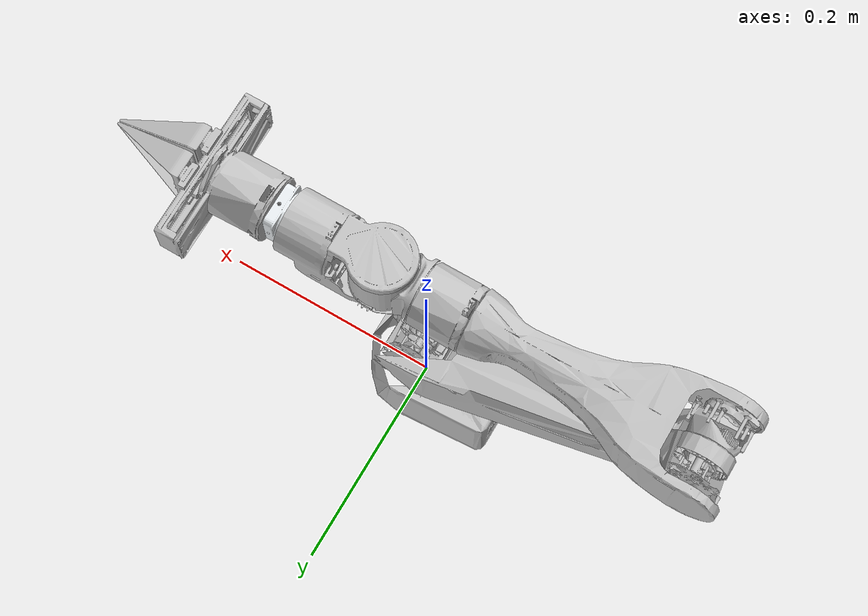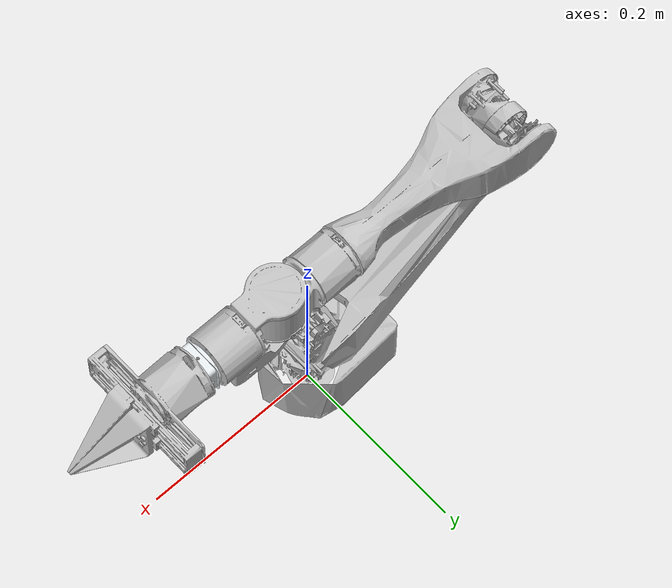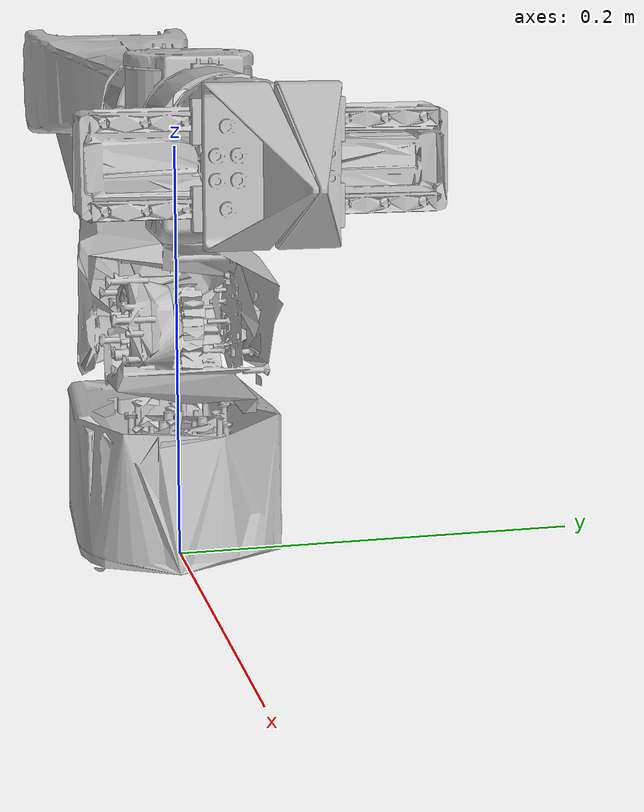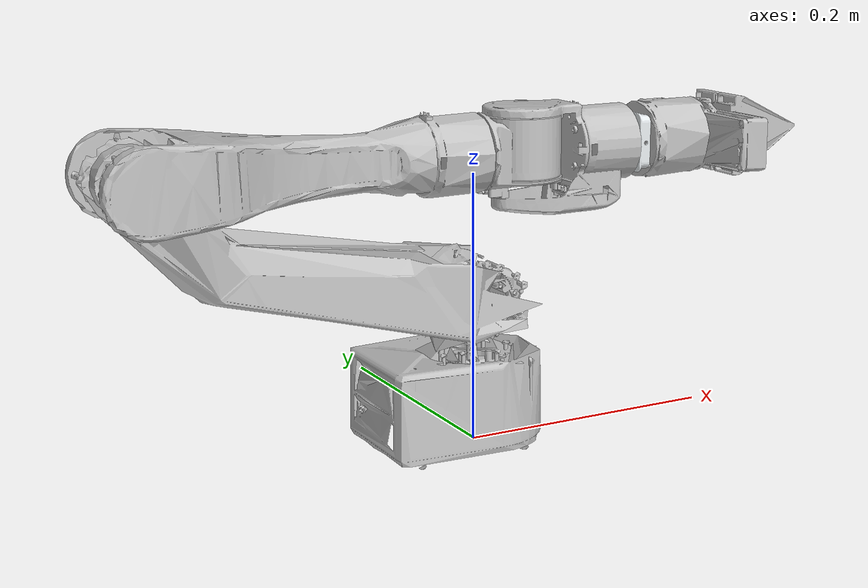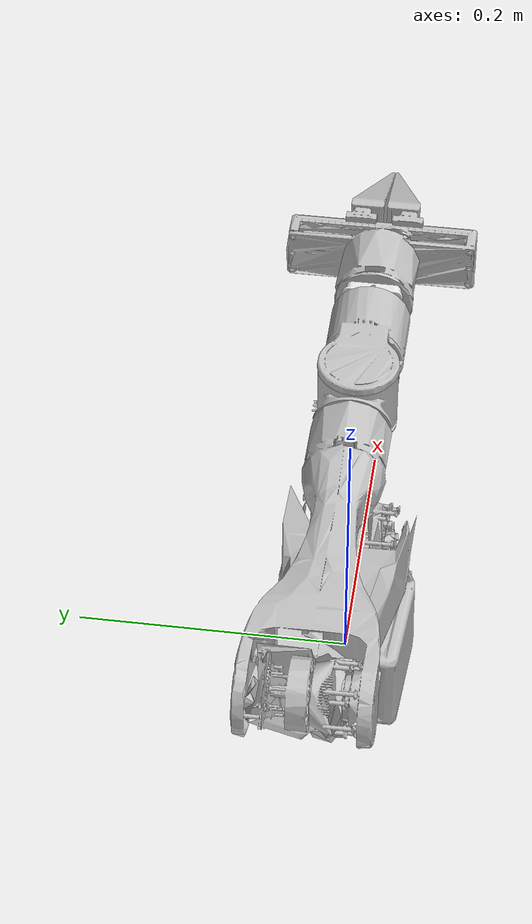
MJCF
<mujoco model="airbot_play_g2">
  <compiler angle="radian" meshdir="meshes/" boundmass="0.0001" boundinertia="1e-08"/>

  <visual>
    <global offwidth="1280" offheight="960"/>
  </visual>

  <asset>
    <mesh name="base_link" file="base_link.obj"/>
    <mesh name="link1" file="link1.obj"/>
    <mesh name="link2" file="link2.obj"/>
    <mesh name="link3" file="link3.obj"/>
    <mesh name="link4" file="link4.obj"/>
    <mesh name="link5" file="link5.obj"/>
    <mesh name="link6" file="link6.obj"/>
    <mesh name="eef_connect_base_link" file="eef_connect_base_link.obj"/>
    <mesh name="g2_base_link" file="g2_base_link.obj"/>
    <mesh name="g2_left_link" file="g2_left_link.obj"/>
    <mesh name="g2_right_link" file="g2_right_link.obj"/>
  </asset>

  <worldbody>
    <body name="base_link">
      <inertial pos="-0.018345 -0.002558 0.03724" quat="0.633314 0.26821 0.308725 0.657013" mass="0.6735" diaginertia="0.00165156 0.00147474 0.00100175"/>
      <geom type="mesh" contype="0" conaffinity="0" group="2" density="0" rgba="0.75294 0.75294 0.75294 1" mesh="base_link"/>
      <geom type="mesh" group="3" rgba="0.75294 0.75294 0.75294 1" mesh="base_link"/>
      <body name="link1" pos="0 0 0.1127">
        <inertial pos="0.00014396 -0.00098536 -0.020968" quat="0.996851 -0.00552866 0.00131697 0.0790989" mass="0.607" diaginertia="0.00111427 0.00101111 0.000386618"/>
        <joint name="joint1" pos="0 0 0" axis="0 0 1" range="-3.1416 2.0944" armature="0.1" damping="1"/>
        <geom type="mesh" contype="0" conaffinity="0" group="2" density="0" rgba="0.75294 0.75294 0.75294 1" mesh="link1"/>
        <geom type="mesh" group="3" rgba="0.75294 0.75294 0.75294 1" mesh="link1"/>
        <body name="link2" quat="0.135867 0.135871 -0.693931 0.69393">
          <inertial pos="0.13769 0.012537 0.0044739" quat="0.544988 0.469712 0.519552 0.460896" mass="0.918" diaginertia="0.0348354 0.0346196 0.000895236"/>
          <joint name="joint2" pos="0 0 0" axis="0 0 1" range="-2.9671 0.17453" armature="0.1" damping="1"/>
          <geom type="mesh" contype="0" conaffinity="0" group="2" density="0" rgba="0.75294 0.75294 0.75294 1" mesh="link2"/>
          <geom type="mesh" group="3" rgba="0.75294 0.75294 0.75294 1" mesh="link2"/>
          <body name="link3" pos="0.27009 0 0" quat="0.55806 0 0 0.8298">
            <inertial pos="1.5134e-05 0.10706 0.0082136" quat="0.709512 0.704687 -0.00192802 0.00241094" mass="0.7" diaginertia="0.0156592 0.0154818 0.000458584"/>
            <joint name="joint3" pos="0 0 0" axis="0 0 1" range="-0.087266 3.1416" armature="0.1" damping="1"/>
            <geom type="mesh" contype="0" conaffinity="0" group="2" density="0" rgba="0.75294 0.75294 0.75294 1" mesh="link3"/>
            <geom type="mesh" group="3" rgba="0.75294 0.75294 0.75294 1" mesh="link3"/>
            <body name="link4" pos="0 0.29015 0" quat="0.499998 -0.5 -0.5 -0.500002">
              <inertial pos="-1.6216e-05 0.002995 -0.019407" quat="0.705825 -0.00378066 0.00351614 0.708367" mass="0.359" diaginertia="0.000529292 0.00051773 0.000136768"/>
              <joint name="joint4" pos="0 0 0" axis="0 0 1" range="-3.0107 3.0107" armature="0.1" damping="1"/>
              <geom type="mesh" contype="0" conaffinity="0" group="2" density="0" rgba="0.75294 0.75294 0.75294 1" mesh="link4"/>
              <geom type="mesh" group="3" rgba="0.75294 0.75294 0.75294 1" mesh="link4"/>
              <body name="link5" quat="0.707105 0.707108 0 0">
                <inertial pos="-4.5037e-05 0.033144 0.0024106" quat="0.686718 0.726922 0.00098681 -0.00117372" mass="0.403" diaginertia="0.00116016 0.0010873 0.000239772"/>
                <joint name="joint5" pos="0 0 0" axis="0 0 1" range="-1.7628 1.7628" armature="0.1" damping="1"/>
                <geom type="mesh" contype="0" conaffinity="0" group="2" density="0" rgba="0.75294 0.75294 0.75294 1" mesh="link5"/>
                <geom type="mesh" group="3" rgba="0.75294 0.75294 0.75294 1" mesh="link5"/>
                <body name="link6" quat="0.707105 -0.707108 0 0">
                  <inertial pos="-4.6366e-05 4.3424e-05 0.066592" quat="0.92957 0.000174474 0.000439951 -0.368646" mass="0.11" diaginertia="0.00051056 0.00051056 1.72996e-05"/>
                  <joint name="joint6" pos="0 0 0" axis="0 0 1" range="-3.0107 3.0107" armature="0.1" damping="1"/>
                  <geom type="mesh" contype="0" conaffinity="0" group="2" density="0" rgba="1 1 1 1" mesh="link6"/>
                  <geom type="mesh" group="3" rgba="1 1 1 1" mesh="link6"/>
                  <body name="eef_connect_base_link" pos="0 0 0.0955">
                    <inertial pos="3.5687e-06 0.00020484 -0.004811" quat="0.502913 0.497096 -0.501767 0.498201" mass="0.019009" diaginertia="7.49802e-06 4.04761e-06 3.94547e-06"/>
                    <geom type="mesh" contype="0" conaffinity="0" group="2" density="0" rgba="0.89804 0.91765 0.92941 1" mesh="eef_connect_base_link"/>
                    <geom type="mesh" group="3" rgba="0.89804 0.91765 0.92941 1" mesh="eef_connect_base_link"/>
                    <body name="g2_base_link">
                      <inertial pos="5.9308e-05 -3.262e-05 0.041814" quat="0.703858 -0.000426583 0.000219568 0.710341" mass="0.488" diaginertia="0.00137336 0.00115521 0.000420509"/>
                      <geom type="mesh" contype="0" conaffinity="0" group="2" density="0" rgba="0.75294 0.75294 0.75294 1" mesh="g2_base_link"/>
                      <geom type="mesh" group="3" rgba="0.75294 0.75294 0.75294 1" mesh="g2_base_link"/>
                      <body name="g2_left_link" pos="0 0 0.0705" quat="0.707105 0 -0.707108 0">
                        <inertial pos="0.018307 5.9636e-06 0.012505" quat="0 0.798204 0 0.602388" mass="0.054004" diaginertia="5.10732e-05 4.78e-05 2.24468e-05"/>
                        <joint name="g2_left_joint" pos="0 0 0" axis="0 0 1" type="slide" range="0 0.0366" armature="0.01" damping="1"/>
                        <geom type="mesh" contype="0" conaffinity="0" group="2" density="0" rgba="0.75294 0.75294 0.75294 1" mesh="g2_left_link"/>
                        <geom type="mesh" group="3" rgba="0.75294 0.75294 0.75294 1" mesh="g2_left_link"/>
                      </body>
                      <body name="g2_right_link" pos="0 0 0.0705" quat="-2.59734e-06 0.707105 2.59735e-06 0.707108">
                        <inertial pos="0.018307 -6.8572e-07 0.012505" quat="0 0.798204 0 0.602388" mass="0.054004" diaginertia="5.10732e-05 4.78e-05 2.24468e-05"/>
                        <joint name="g2_right_joint" pos="0 0 0" axis="0 0 1" type="slide" range="0 0.0366" armature="0.01" damping="1"/>
                        <geom type="mesh" contype="0" conaffinity="0" group="2" density="0" rgba="0.75294 0.75294 0.75294 1" mesh="g2_right_link"/>
                        <geom type="mesh" group="3" rgba="0.75294 0.75294 0.75294 1" mesh="g2_right_link"/>
                      </body>
                      <body name="g2_virtual_link">
                        <inertial pos="0 0 0" mass="0.02" diaginertia="1e-05 1e-05 1e-05"/>
                        <joint name="g2_joint" pos="0 0 0" axis="0 0 1" type="slide" range="0 0.072" armature="0.01" damping="1"/>
                      </body>
                    </body>
                  </body>
                  <body name="end_link" pos="0 0 0.2466" quat="0.499998 0.5 -0.5 0.500002"/>
                </body>
              </body>
            </body>
          </body>
        </body>
      </body>
    </body>
  </worldbody>

  <equality>
    <joint joint1="g2_left_joint" joint2="g2_joint" polycoef="0 0.5 0 0 0"/>
    <joint joint1="g2_right_joint" joint2="g2_joint" polycoef="0 0.5 0 0 0"/>
  </equality>

  <actuator>
    <general name="act_joint1" joint="joint1" ctrllimited="true" ctrlrange="-3.1416 2.0944" biastype="affine" gainprm="300" biasprm="0 -300 -20"/>
    <general name="act_joint2" joint="joint2" ctrllimited="true" ctrlrange="-2.9671 0.17453" biastype="affine" gainprm="300" biasprm="0 -300 -20"/>
    <general name="act_joint3" joint="joint3" ctrllimited="true" ctrlrange="-0.087266 3.1416" biastype="affine" gainprm="300" biasprm="0 -300 -20"/>
    <general name="act_joint4" joint="joint4" ctrllimited="true" ctrlrange="-3.0107 3.0107" biastype="affine" gainprm="300" biasprm="0 -300 -20"/>
    <general name="act_joint5" joint="joint5" ctrllimited="true" ctrlrange="-1.7628 1.7628" biastype="affine" gainprm="300" biasprm="0 -300 -20"/>
    <general name="act_joint6" joint="joint6" ctrllimited="true" ctrlrange="-3.0107 3.0107" biastype="affine" gainprm="300" biasprm="0 -300 -20"/>
    <general name="act_g2_joint" joint="g2_joint" ctrllimited="true" ctrlrange="0 0.072" biastype="affine" gainprm="200" biasprm="0 -200 -5"/>
  </actuator>
</mujoco>
